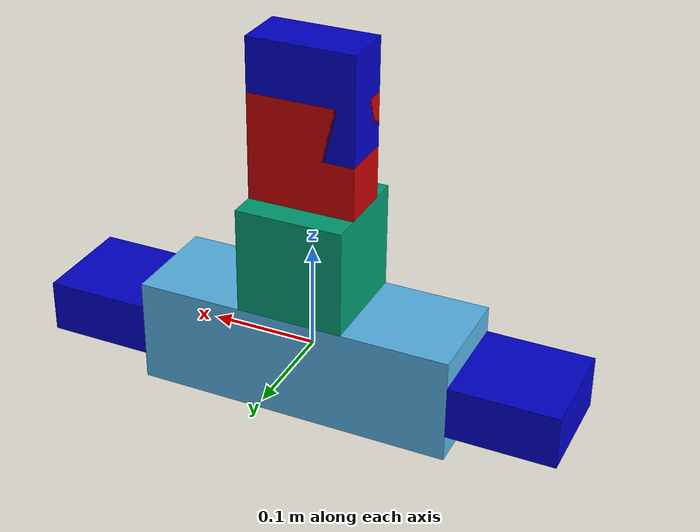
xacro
<?xml version="1.0"?>
<robot xmlns:xacro="http://www.ros.org/wiki/xacro" name="Chain">

<xacro:property name="m" value="1" />
<xacro:macro name="compute_inertia" params="mass x y z">
      <mass value="${mass}"/>
      <inertia ixx="${mass*(y*y + z*z)/3}" ixy="0.0" ixz="0.0" iyy="${mass*(x*x + z*z)/3}" iyz="0.0" izz="${mass*(x*x + y*y)/3}"/>
</xacro:macro>

  <link name="baselink"/>
  <link name="chainbase">
    <visual>
      <geometry>
        <box size="0.3 0.1 0.1"/>
      </geometry>
    </visual>
    <inertial>
			<xacro:compute_inertia mass="${m}" x="0.3" y="0.1" z="0.1"/>
    </inertial>
  </link>
  <link name="fixedlink">
    <visual>
      <geometry>
        <box size="0.1 0.1 0.1"/>
      </geometry>
    </visual>
    <inertial>
			<xacro:compute_inertia mass="${m}" x="0.1" y="0.1" z="0.1"/>
    </inertial>
  </link>
  <link name="link1">
    <visual>
			<origin rpy="0 0 0" xyz="0.05 0.0 0"/>
      <geometry>
        <box size="0.1 .10 0.05"/>
      </geometry>
      <material name="blue">
        <color rgba="0 0 0.8 1"/>
      </material>
    </visual>
    <inertial>
			<origin rpy="0 0 0" xyz="0.05 0.0 0"/>
			<xacro:compute_inertia mass="${m}" x="0.1" y="0.1" z="0.05"/>
    </inertial>
  </link>
  <link name="link2">
    <visual>
			<origin rpy="0 0 0" xyz="-0.05 0.0 0"/>
      <geometry>
        <box size="0.1 .10 0.05"/>
      </geometry>
      <material name="blue">
        <color rgba="0 0 0.8 1"/>
      </material>
    </visual>
    <inertial>
			<origin rpy="0 0 0" xyz="-0.05 0.0 0"/>
			<xacro:compute_inertia mass="${m}" x="0.1" y="0.1" z="0.05"/>
    </inertial>
  </link>
	<link name="link3">
    <visual>
			<origin rpy="0 0 0" xyz="0.0 0.0 0.05"/>
      <geometry>
        <box size="0.1 0.05 0.1"/>
      </geometry>
      <material name="red">
        <color rgba="0.8 0 0 1"/>
      </material>
    </visual>
    <inertial>
			<origin rpy="0 0 0" xyz="0.0 0.0 0.05"/>
			<xacro:compute_inertia mass="${m}" x="0.1" y="0.05" z="0.1"/>
    </inertial>
  </link>
	<link name="link4">
    <visual>
			<origin rpy="0 0 0" xyz="0.0 0.0 0.05"/>
      <geometry>
        <box size="0.1 0.05 0.1"/>
      </geometry>
      <material name="blue">
        <color rgba="0 0 0.8 1"/>
      </material>
    </visual>
    <inertial>
			<origin rpy="0 0 0" xyz="0.0 0.0 0.05"/>
			<xacro:compute_inertia mass="${m}" x="0.1" y="0.05" z="0.1"/>
    </inertial>
  </link>

 <!-- Joints -->
  <joint name="basetoroot" type="fixed">
    <parent link="baselink"/>
    <child link="chainbase"/>
    <origin rpy="0 0 0" xyz="0 0 0"/>
  </joint>
  <joint name="roottofixedlink1" type="fixed">
    <parent link="chainbase"/>
    <child link="fixedlink"/>
    <origin rpy="0 0 0" xyz="0.0 0.0 0.1"/>
  </joint>
	<joint name="fixedlinktolink3" type="fixed">
    <parent link="fixedlink"/>
    <child link="link3"/>
    <origin rpy="0 0 0" xyz="0.0 0.0 0.05"/>
  </joint>
	<joint name="link3tolink4" type="revolute">
    <parent link="link3"/>
    <child link="link4"/>
    <origin rpy="0 0 0" xyz="0.0 0.0 0.05"/>
    <axis xyz="0 -1 0"/>
		<limit effort="30" velocity="5.0" lower="-5" upper="5" />
  </joint>
  <joint name="roottolink1" type="revolute">
    <parent link="chainbase"/>
    <child link="link1"/>
    <origin rpy="0 0 0" xyz="0.15 0.0 0"/>
    <axis xyz="0 -1 0"/>
		<limit effort="30" velocity="5.0" lower="-5" upper="5" />
  </joint>
  <joint name="roottolink2" type="revolute">
    <parent link="chainbase"/>
    <child link="link2"/>
    <origin rpy="0 0 0" xyz="-0.15 0.0 0"/>
    <axis xyz="0 -1 0"/>
		<limit effort="30" velocity="5.0" lower="-5" upper="5" />
  </joint>
</robot>
